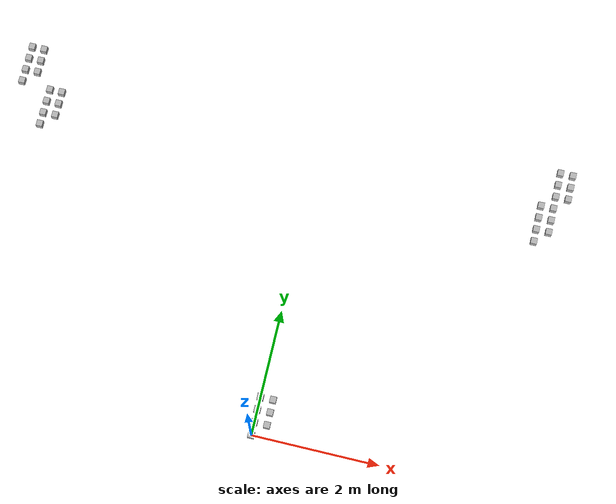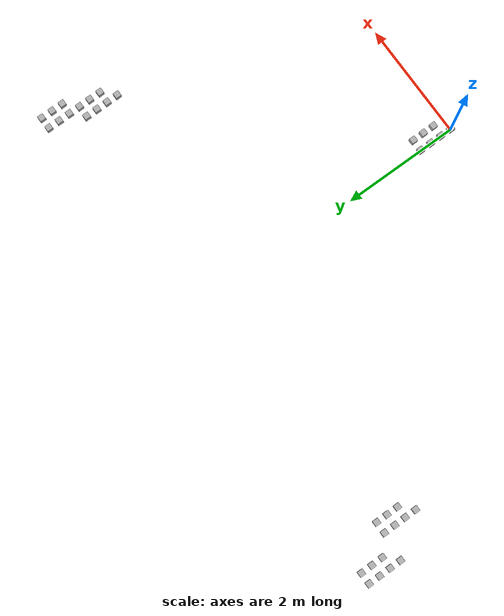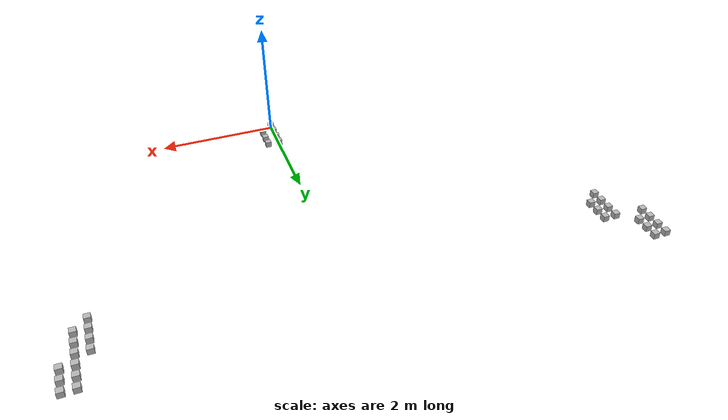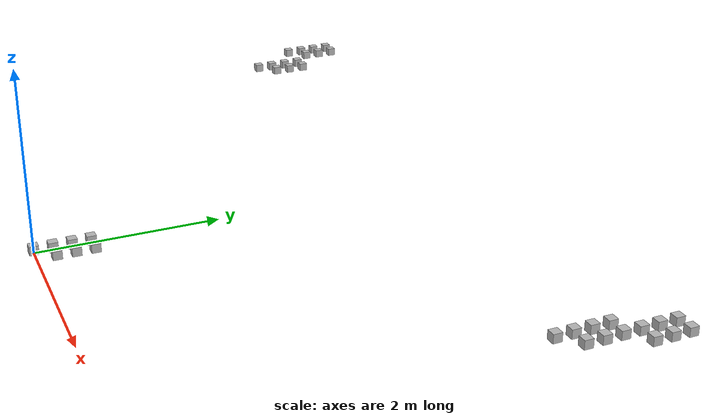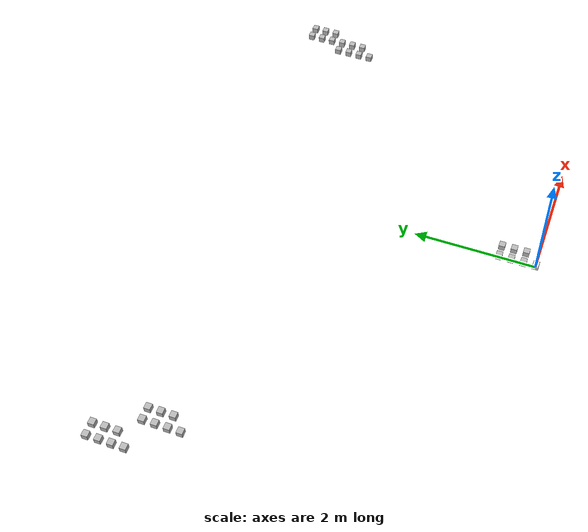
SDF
<sdf version="1.7">
 <world name="scene">
  <physics name="physics" type="ode">
   <max_step_size>0.004</max_step_size>
   <real_time_factor>1.0</real_time_factor>
   <real_time_update_rate>250</real_time_update_rate>
  </physics>
  <gravity>0 0 -9.8</gravity>
  <magnetic_field>0.000024 0.000000 -0.000048</magnetic_field>
  <atmosphere type="adiabatic"/>
  <scene><grid>false</grid></scene>
  <include><uri>model://ground/model.sdf</uri><name>ground</name></include>
  <include><uri>model://helipad/model.sdf</uri><name>helipad</name><pose>-4.98 4.75 0 0 0 0</pose></include>
  <include><uri>model://dogpad/model.sdf</uri><name>dogpad</name><pose>3.8 4.6 0 0 0 0</pose></include>
  <include><uri>model://goods_pads/model.sdf</uri><name>goods_pads</name><pose>3.6 4 0 0 0 0</pose></include>
  <include><uri>model://goods/model.sdf</uri><name>goods</name><pose>-4.5 4.1 0 0 0 0</pose></include>
  <model name="walls">
   <static>true</static>
   <link name="walls_link">
    <collision name="-z">
     <pose>0 0 -0.01 0 0 0</pose>
     <geometry><box><size>15 15 0.01</size></box></geometry>
    </collision>
    <collision name="z">
     <pose>0 0 25 0 0 0</pose>
     <geometry><box><size>15 15 0.01</size></box></geometry>
    </collision>
    <collision name="-x">
     <pose>-7.5 0 12.5 0 1.5707 0</pose>
     <geometry><box><size>25 15 0.01</size></box></geometry>
    </collision>
    <collision name="x">
     <pose>7.5 0 12.5 0 1.5707 0</pose>
     <geometry><box><size>25 15 0.01</size></box></geometry>
    </collision>
    <collision name="-y">
     <pose>0 -7.5 12.5 1.5707 0 0</pose>
     <geometry><box><size>15 25 0.01</size></box></geometry>
    </collision>
    <collision name="y">
     <pose>0 7.5 12.5 1.5707 0 0</pose>
     <geometry><box><size>15 25 0.01</size></box></geometry>
    </collision>
   </link>
  </model>
  <light type="directional" name="sun">
   <pose>0 0 500 0 0 0</pose>
   <diffuse>0.8 0.8 0.8 1</diffuse>
   <specular>0.2 0.2 0.2 1</specular>
   <attenuation>
    <range>1000</range>
    <constant>0.9</constant>
    <linear>0.01</linear>
    <quadratic>0.001</quadratic>
   </attenuation>
   <direction>-0.5 0.1 -0.9</direction>
  </light>
  <spherical_coordinates>
   <surface_model>EARTH_WGS84</surface_model>
   <world_frame_orientation>ENU</world_frame_orientation>
   <latitude_deg>54.869339</latitude_deg>
   <longitude_deg>83.079488</longitude_deg>
   <elevation>38</elevation>
  </spherical_coordinates>
 </world>
</sdf>

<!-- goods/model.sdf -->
<sdf version='1.7'>
  <model name='goods'>
    <static>false</static>

    <link name='no_tag'>
      <pose>0 0 0.05 0 0 0</pose>
      <visual name="visual">
        <geometry>
          <mesh>
            <uri>model://goods/meshes/box.dae</uri>
            <scale>1 1 1</scale>
          </mesh>
        </geometry>
      </visual>
      <collision name="collision">
        <geometry>
          <box>
            <size>0.1 0.1 0.1</size>
          </box>
        </geometry>
      </collision>
      <inertial>
        <mass>0.05</mass>
        <inertia>
          <ixx>0.0001</ixx>
          <iyy>0.0001</iyy>
          <izz>0.0001</izz>
        </inertia>
      </inertial>
    </link>

    <link name='tag36h11-00'>
      <pose relative_to='no_tag'>0 0.6 0 0 0 0</pose>
      <visual name="visual">
        <geometry>
          <mesh>
            <uri>model://goods/meshes/box00.dae</uri>
            <scale>1 1 1</scale>
          </mesh>
        </geometry>
      </visual>
      <collision name="collision">
        <geometry>
          <box>
            <size>0.1 0.1 0.1</size>
          </box>
        </geometry>
      </collision>
      <inertial>
        <mass>0.05</mass>
        <inertia>
          <ixx>0.0001</ixx>
          <iyy>0.0001</iyy>
          <izz>0.0001</izz>
        </inertia>
      </inertial>
    </link>

    <link name='tag36h11-01'>
      <pose relative_to='no_tag'>0.2 0.6 0 0 0 0</pose>
      <visual name="visual">
        <geometry>
          <mesh>
            <uri>model://goods/meshes/box01.dae</uri>
            <scale>1 1 1</scale>
          </mesh>
        </geometry>
      </visual>
      <collision name="collision">
        <geometry>
          <box>
            <size>0.1 0.1 0.1</size>
          </box>
        </geometry>
      </collision>
      <inertial>
        <mass>0.05</mass>
        <inertia>
          <ixx>0.0001</ixx>
          <iyy>0.0001</iyy>
          <izz>0.0001</izz>
        </inertia>
      </inertial>
    </link>

    <link name='tag36h11-02'>
      <pose relative_to='no_tag'>0 0.4 0 0 0 0</pose>
      <visual name="visual">
        <geometry>
          <mesh>
            <uri>model://goods/meshes/box02.dae</uri>
            <scale>1 1 1</scale>
          </mesh>
        </geometry>
      </visual>
      <collision name="collision">
        <geometry>
          <box>
            <size>0.1 0.1 0.1</size>
          </box>
        </geometry>
      </collision>
      <inertial>
        <mass>0.05</mass>
        <inertia>
          <ixx>0.0001</ixx>
          <iyy>0.0001</iyy>
          <izz>0.0001</izz>
        </inertia>
      </inertial>
    </link>

    <link name='tag36h11-03'>
      <pose relative_to='no_tag'>0.2 0.4 0 0 0 0</pose>
      <visual name="visual">
        <geometry>
          <mesh>
            <uri>model://goods/meshes/box03.dae</uri>
            <scale>1 1 1</scale>
          </mesh>
        </geometry>
      </visual>
      <collision name="collision">
        <geometry>
          <box>
            <size>0.1 0.1 0.1</size>
          </box>
        </geometry>
      </collision>
      <inertial>
        <mass>0.05</mass>
        <inertia>
          <ixx>0.0001</ixx>
          <iyy>0.0001</iyy>
          <izz>0.0001</izz>
        </inertia>
      </inertial>
    </link>

    <link name='tag36h11-04'>
      <pose relative_to='no_tag'>0 0.2 0 0 0 0</pose>
      <visual name="visual">
        <geometry>
          <mesh>
            <uri>model://goods/meshes/box04.dae</uri>
            <scale>1 1 1</scale>
          </mesh>
        </geometry>
      </visual>
      <collision name="collision">
        <geometry>
          <box>
            <size>0.1 0.1 0.1</size>
          </box>
        </geometry>
      </collision>
      <inertial>
        <mass>0.05</mass>
        <inertia>
          <ixx>0.0001</ixx>
          <iyy>0.0001</iyy>
          <izz>0.0001</izz>
        </inertia>
      </inertial>
    </link>

    <link name='tag36h11-05'>
      <pose relative_to='no_tag'>0.2 0.2 0 0 0 0</pose>
      <visual name="visual">
        <geometry>
          <mesh>
            <uri>model://goods/meshes/box05.dae</uri>
            <scale>1 1 1</scale>
          </mesh>
        </geometry>
      </visual>
      <collision name="collision">
        <geometry>
          <box>
            <size>0.1 0.1 0.1</size>
          </box>
        </geometry>
      </collision>
      <inertial>
        <mass>0.05</mass>
        <inertia>
          <ixx>0.0001</ixx>
          <iyy>0.0001</iyy>
          <izz>0.0001</izz>
        </inertia>
      </inertial>
    </link>

  </model>
</sdf>
